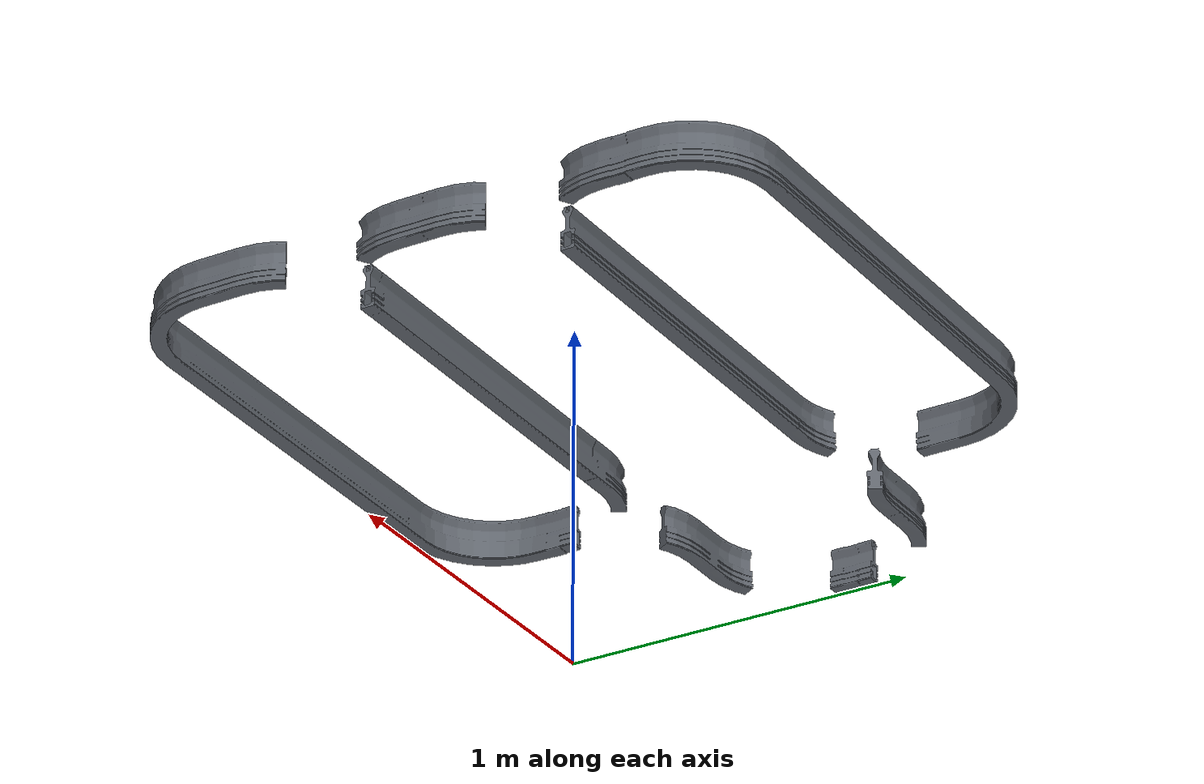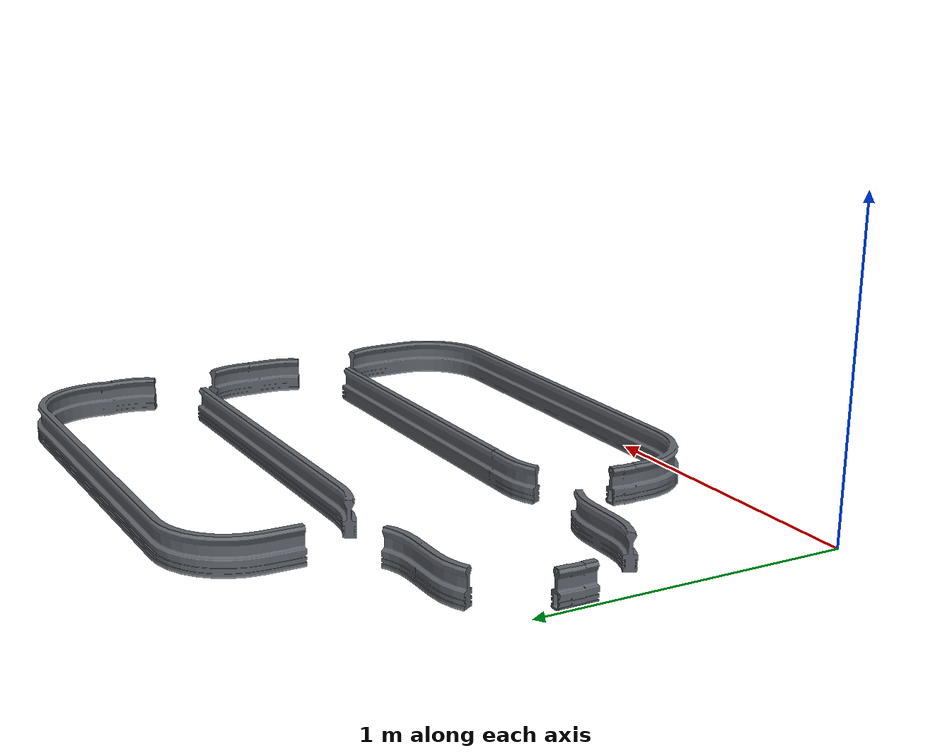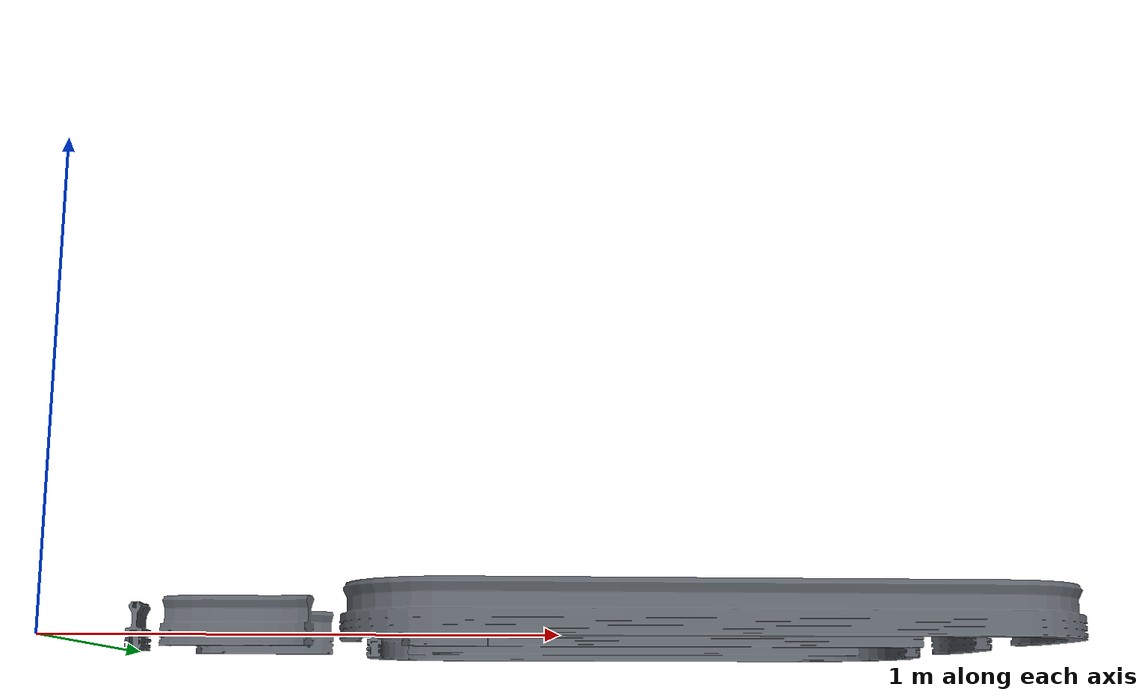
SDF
<?xml version="1.0"?>
<sdf version="1.9">
  <model name="cell_path_right">
    <static>true</static>
    <link name="cell_path_right_link">
      <visual name="cell_path_right_visual">
        <geometry>
          <mesh>
            <uri>model://cell_path_right/meshes/CELL_PATH_RIGHT.STL</uri>
          </mesh>
        </geometry>
        <material>
          <ambient>0.38 0.40 0.43 1</ambient>
          <diffuse>0.38 0.40 0.43 1</diffuse>
          <specular>0.30 0.30 0.30 1</specular>
          <emissive>0 0 0 1</emissive>
        </material>
      </visual>
      <collision name="cell_path_right_collision">
        <geometry>
          <mesh>
            <uri>model://cell_path_right/meshes/CELL_PATH_RIGHT.STL</uri>
          </mesh>
        </geometry>
        <surface>
          <friction>
            <ode>
              <mu>0.35</mu>
              <mu2>0.35</mu2>
            </ode>
            <bullet>
              <friction>0.35</friction>
              <friction2>0.35</friction2>
              <rolling_friction>0.01</rolling_friction>
            </bullet>
          </friction>
          <contact>
            <collide_bitmask>0x0001</collide_bitmask>
            <ode>
              <kp>2000000</kp>
              <kd>50</kd>
              <max_vel>0.1</max_vel>
              <min_depth>0.001</min_depth>
            </ode>
            <bullet>
              <kp>2000000</kp>
              <kd>50</kd>
            </bullet>
          </contact>
        </surface>
      </collision>
    </link>
  </model>
</sdf>
